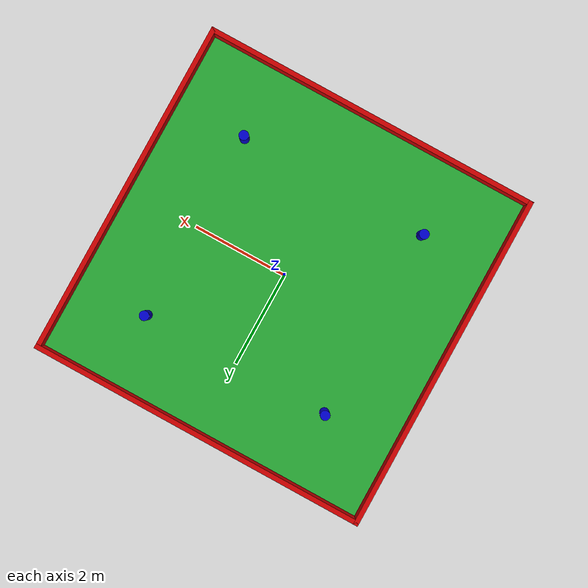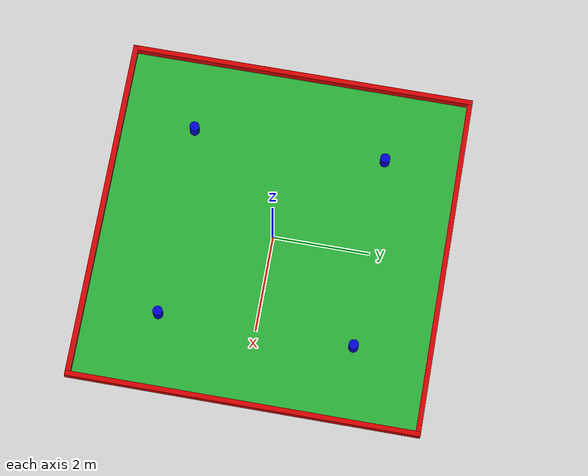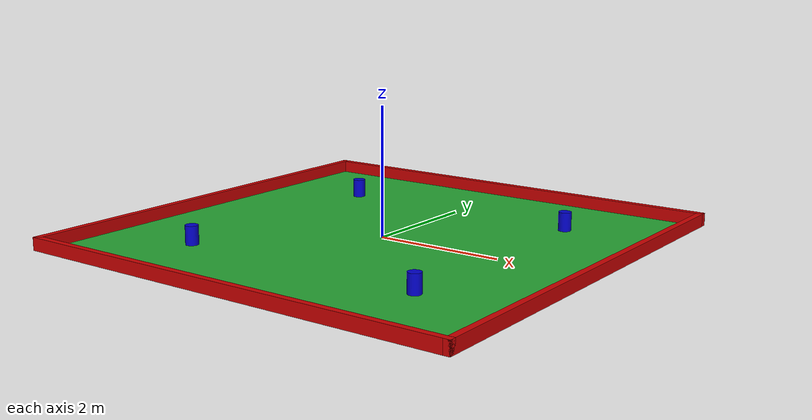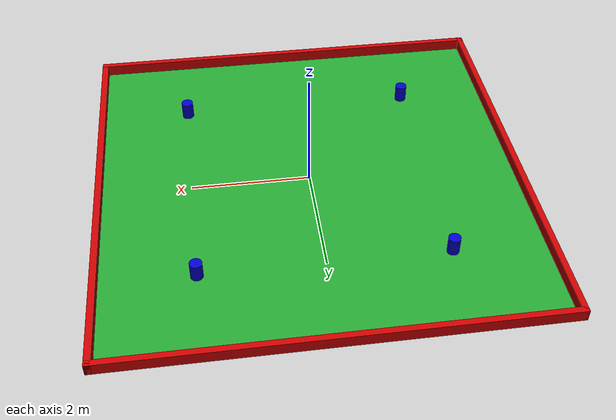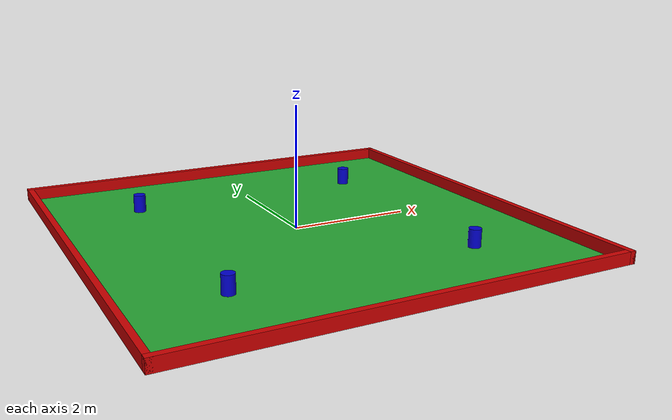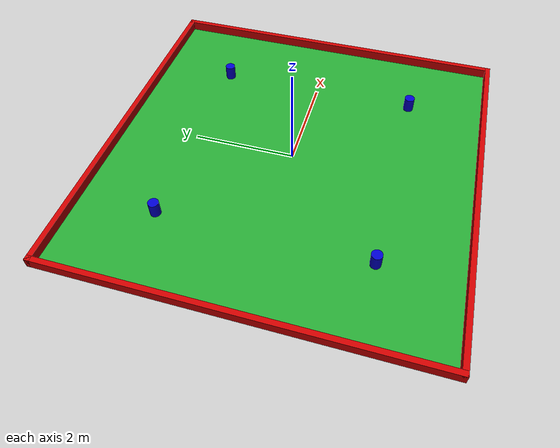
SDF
<sdf version="1.5">
 <world name="default">
  <physics name="default_physics" default="0" type="ode">
   <max_step_size>0.001</max_step_size>
   <real_time_factor>1</real_time_factor>
   <real_time_update_rate>1000</real_time_update_rate>
  </physics>
  <scene><ambient>0.4 0.4 0.4 1</ambient><background>0.7 0.7 0.7 1</background><shadows>0</shadows></scene>
  <light name="sun" type="directional">
   <pose>0 0 10 0 -0 0</pose>
   <diffuse>0.8 0.8 0.8 1</diffuse>
   <specular>0.1 0.1 0.1 1</specular>
   <attenuation>
    <range>1000</range>
    <constant>0.9</constant>
    <linear>0.01</linear>
    <quadratic>0.001</quadratic>
   </attenuation>
   <direction>-0.5 0.5 -1</direction>
  </light>
  <model name="miro_football_pitch">
   <static>true</static>
   <link name="main">
    <visual name="wall_top">
     <pose>0 3.55 0.1 0 0 0</pose>
     <geometry><box><size>7.2 0.1 0.2</size></box></geometry>
     <material><ambient>0.8 0 0 1</ambient><diffuse>0.8 0 0 1</diffuse></material>
    </visual>
    <collision name="collision_wall_top">
     <pose>0 3.55 0.1 0 0 0</pose>
     <geometry><box><size>7.2 0.1 0.2</size></box></geometry>
     <surface><friction><ode><mu>1</mu><mu2>1</mu2></ode></friction></surface>
    </collision>
    <visual name="wall_bottom">
     <pose>0 -3.55 0.1 0 0 0</pose>
     <geometry><box><size>7.2 0.1 0.2</size></box></geometry>
     <material><ambient>0.8 0 0 1</ambient><diffuse>0.8 0 0 1</diffuse></material>
    </visual>
    <collision name="collision_wall_bottom">
     <pose>0 -3.55 0.1 0 0 0</pose>
     <geometry><box><size>7.2 0.1 0.2</size></box></geometry>
     <surface><friction><ode><mu>1</mu><mu2>1</mu2></ode></friction></surface>
    </collision>
    <visual name="wall_left">
     <pose>-3.55 0 0.1 0 0 0</pose>
     <geometry><box><size>0.1 7.2 0.2</size></box></geometry>
     <material><ambient>0.8 0 0 1</ambient><diffuse>0.8 0 0 1</diffuse></material>
    </visual>
    <collision name="collision_wall_left">
     <pose>-3.55 0 0.1 0 0 0</pose>
     <geometry><box><size>0.1 7.2 0.2</size></box></geometry>
     <surface><friction><ode><mu>1</mu><mu2>1</mu2></ode></friction></surface>
    </collision>
    <visual name="wall_right">
     <pose>3.55 0 0.1 0 0 0</pose>
     <geometry><box><size>0.1 7.2 0.2</size></box></geometry>
     <material><ambient>0.8 0 0 1</ambient><diffuse>0.8 0 0 1</diffuse></material>
    </visual>
    <collision name="collision_wall_right">
     <pose>3.55 0 0.1 0 0 0</pose>
     <geometry><box><size>0.1 7.2 0.2</size></box></geometry>
     <surface><friction><ode><mu>1</mu><mu2>1</mu2></ode></friction></surface>
    </collision>
    <visual name="visual_20">
     <geometry><box><size>7.000 7.000 0.010</size></box></geometry>
     <material>
      <script><uri>file://media/materials/scripts/gazebo.material</uri><name>Gazebo/Green</name></script>
     </material>
    </visual>
    <collision name="collision_20">
     <geometry><box><size>7.000 7.000 0.010</size></box></geometry>
     <surface><friction><ode><mu>1</mu><mu2>1</mu2></ode></friction></surface>
    </collision>
   </link>
  </model>
  <model name="cylinder_obstacle_1">
   <static>true</static>
   <pose>2.0 2.0 0.15 0 0 0</pose>
   <link name="link">
    <visual name="visual">
     <geometry><cylinder><radius>0.1</radius><length>0.3</length></cylinder></geometry>
     <material><ambient>0 0 0.8 1</ambient><diffuse>0 0 0.8 1</diffuse></material>
    </visual>
    <collision name="collision">
     <geometry><cylinder><radius>0.1</radius><length>0.3</length></cylinder></geometry>
    </collision>
   </link>
  </model>
  <model name="cylinder_obstacle_2">
   <static>true</static>
   <pose>2.0 -2.0 0.15 0 0 0</pose>
   <link name="link">
    <visual name="visual">
     <geometry><cylinder><radius>0.1</radius><length>0.3</length></cylinder></geometry>
     <material><ambient>0 0 0.8 1</ambient><diffuse>0 0 0.8 1</diffuse></material>
    </visual>
    <collision name="collision">
     <geometry><cylinder><radius>0.1</radius><length>0.3</length></cylinder></geometry>
    </collision>
   </link>
  </model>
  <model name="cylinder_obstacle_3">
   <static>true</static>
   <pose>-2.0 2.0 0.15 0 0 0</pose>
   <link name="link">
    <visual name="visual">
     <geometry><cylinder><radius>0.1</radius><length>0.3</length></cylinder></geometry>
     <material><ambient>0 0 0.8 1</ambient><diffuse>0 0 0.8 1</diffuse></material>
    </visual>
    <collision name="collision">
     <geometry><cylinder><radius>0.1</radius><length>0.3</length></cylinder></geometry>
    </collision>
   </link>
  </model>
  <model name="cylinder_obstacle_4">
   <static>true</static>
   <pose>-2.0 -2.0 0.15 0 0 0</pose>
   <link name="link">
    <visual name="visual">
     <geometry><cylinder><radius>0.1</radius><length>0.3</length></cylinder></geometry>
     <material><ambient>0 0 0.8 1</ambient><diffuse>0 0 0.8 1</diffuse></material>
    </visual>
    <collision name="collision">
     <geometry><cylinder><radius>0.1</radius><length>0.3</length></cylinder></geometry>
    </collision>
   </link>
  </model>
  <gravity>0 0 -9.8</gravity>
  <magnetic_field>6e-06 2.3e-05 -4.2e-05</magnetic_field>
  <atmosphere type="adiabatic"/>
  <spherical_coordinates>
   <surface_model>EARTH_WGS84</surface_model>
   <latitude_deg>0</latitude_deg>
   <longitude_deg>0</longitude_deg>
   <elevation>0</elevation>
   <heading_deg>0</heading_deg>
  </spherical_coordinates>
 </world>
</sdf>
